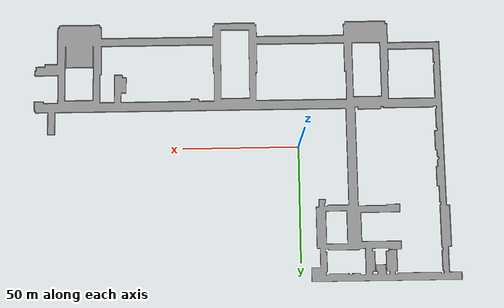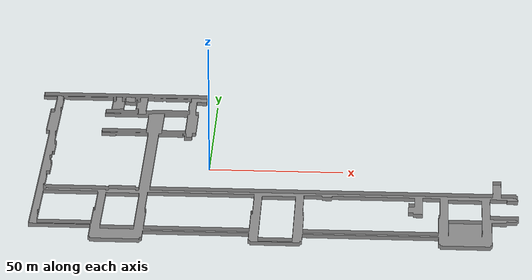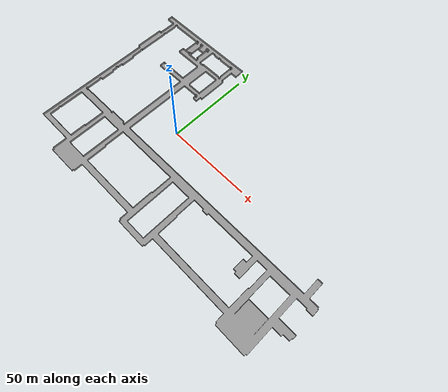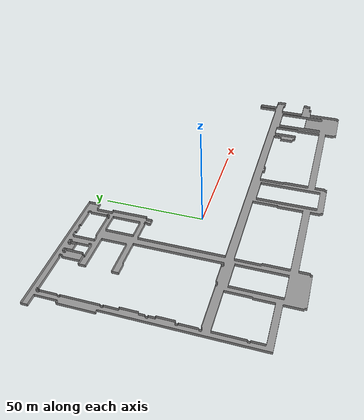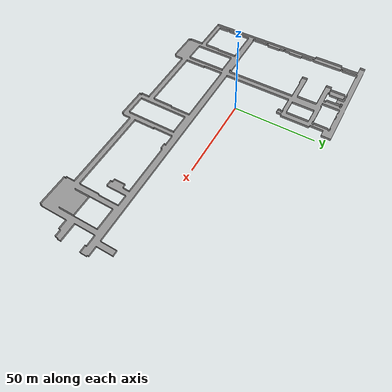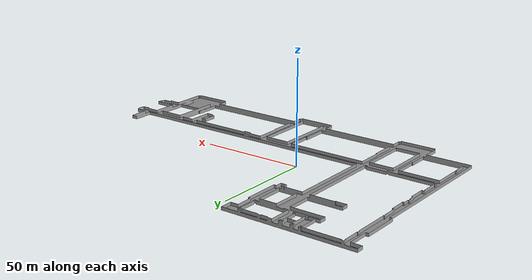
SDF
<sdf version="1.6">
 <world name="building_model">
  <model name="walls">
   <static>1</static>
   <pose frame="walls_frame">0 0 0 0.0 0.0 0.0</pose>
   <link name="walls_link">
    <inertial>
     <mass>0</mass>
     <inertia><ixx>1.</ixx><ixy>0.</ixy><ixz>0.</ixz><iyy>1.</iyy><iyz>0.</iyz><izz>1.</izz></inertia>
    </inertial>
    <visual name="walls_mesh">
     <geometry><mesh><scale>250 250 250</scale><uri>assets/env/building/output_walls.obj</uri></mesh></geometry>
     <material>
      <lighting>1</lighting>
      <ambient>0.3 0.3 0.3 1.0</ambient>
      <diffuse>0.6 0.6 0.6 1.0</diffuse>
      <specular>0.3 0.3 0.3 1.0</specular>
     </material>
    </visual>
    <collision name="walls_collision">
     <geometry><mesh><scale>250 250 250</scale><uri>assets/env/building/output_walls.obj</uri></mesh></geometry>
    </collision>
   </link>
  </model>
  <model name="floors">
   <static>1</static>
   <pose frame="floors_frame">0 0 0 0.0 0.0 0.0</pose>
   <link name="floors_link">
    <inertial>
     <mass>0</mass>
     <inertia><ixx>1.</ixx><ixy>0.</ixy><ixz>0.</ixz><iyy>1.</iyy><iyz>0.</iyz><izz>1.</izz></inertia>
    </inertial>
    <visual name="floors_mesh">
     <geometry><mesh><scale>250 250 250</scale><uri>assets/env/building/output_floors.obj</uri></mesh></geometry>
     <material>
      <lighting>1</lighting>
      <ambient>0.3 0.3 0.3 1.0</ambient>
      <diffuse>0.6 0.6 0.6 1.0</diffuse>
      <specular>0.3 0.3 0.3 1.0</specular>
     </material>
    </visual>
    <collision name="floors_collision">
     <geometry><mesh><scale>250 250 250</scale><uri>assets/env/building/output_floors.obj</uri></mesh></geometry>
    </collision>
   </link>
  </model>
  <light name="sun" type="directional">
   <pose>0 0 10 0 0 0</pose>
   <diffuse>0.8 0.8 0.8 0</diffuse>
   <specular>0.2 0.2 0.2 0</specular>
   <attenuation>
    <range>1000</range>
    <constant>1.</constant>
    <linear>.1</linear>
    <quadratic>.001</quadratic>
   </attenuation>
   <direction>-1.0 -1.0 -1.0</direction>
  </light>
  <gravity>0 0 -9.8</gravity>
  <magnetic_field>6e-06 2.3e-05 -4.2e-05</magnetic_field>
  <atmosphere type="adiabatic"/>
  <physics default="0" name="default_physics" type="ode">
   <max_step_size>.001</max_step_size>
   <real_time_factor>1</real_time_factor>
   <real_time_update_rate>1000</real_time_update_rate>
  </physics>
  <scene><ambient>0.6 0.6 0.6 1.0</ambient><background>0.7 0.7 0.7 1.0</background><shadows>1</shadows></scene>
  <spherical_coordinates>
   <surface_model>EARTH_WGS84</surface_model>
   <latitude_deg>0</latitude_deg>
   <longitude_deg>0</longitude_deg>
   <elevation>0</elevation>
   <heading_deg>0</heading_deg>
  </spherical_coordinates>
 </world>
</sdf>
